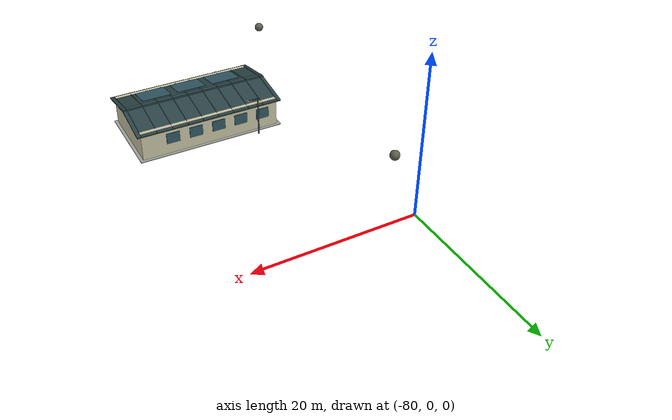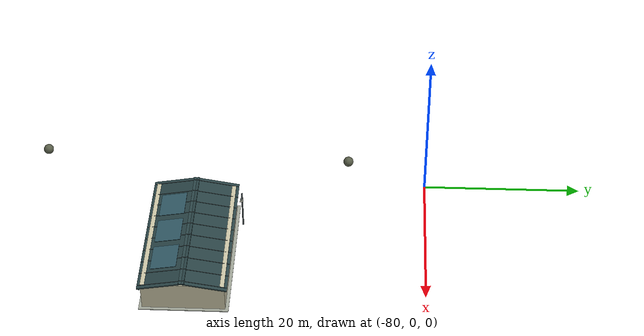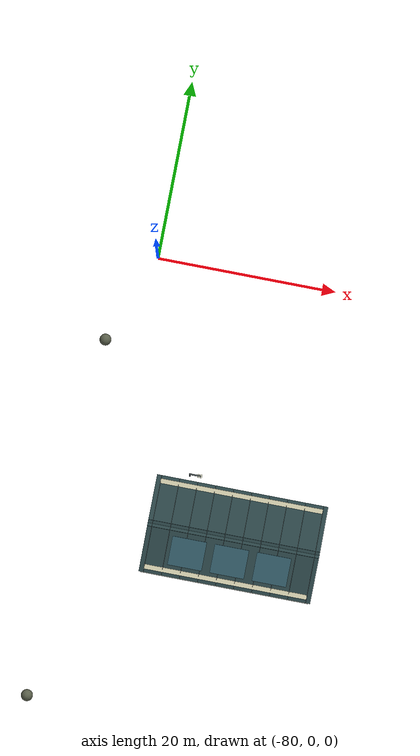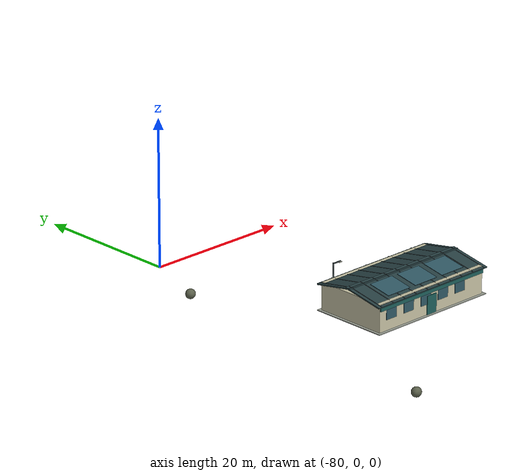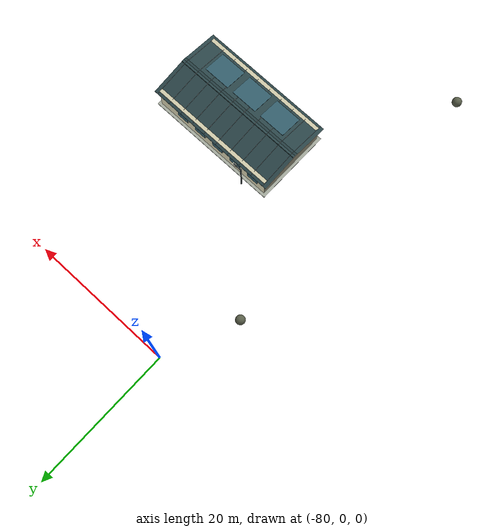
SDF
<sdf version="1.9">
 <world name="fleetscope_estate">
  <model name="field_office">
   <static>true</static>
   <pose>-66 -29 0 0 0 0</pose>
   <link name="structure">
    <visual name="visual_0">
     <pose>0 0 0.05 0 0 0</pose>
     <geometry><box><size>18.8 10.8 0.1</size></box></geometry>
     <material>
      <ambient>0.63 0.65 0.6 1</ambient>
      <diffuse>0.63 0.65 0.6 1</diffuse>
      <specular>.08 .08 .08 1</specular>
     </material>
     <cast_shadows>false</cast_shadows>
    </visual>
    <collision name="collision_0">
     <pose>0 0 0.05 0 0 0</pose>
     <geometry><box><size>18.8 10.8 0.1</size></box></geometry>
    </collision>
    <visual name="visual_1">
     <pose>0 0 1.9 0 0 0</pose>
     <geometry><box><size>18 10 3.8</size></box></geometry>
     <material>
      <ambient>0.8 0.78 0.66 1</ambient>
      <diffuse>0.8 0.78 0.66 1</diffuse>
      <specular>.08 .08 .08 1</specular>
     </material>
    </visual>
    <collision name="collision_1">
     <pose>0 0 1.9 0 0 0</pose>
     <geometry><box><size>18 10 3.8</size></box></geometry>
    </collision>
    <visual name="visual_2">
     <pose>-7 -5.035 2.204 0 0 0</pose>
     <geometry><box><size>1.7 0.08 1.4</size></box></geometry>
     <material>
      <ambient>0.19 0.35 0.4 1</ambient>
      <diffuse>0.19 0.35 0.4 1</diffuse>
      <specular>.08 .08 .08 1</specular>
     </material>
    </visual>
    <visual name="visual_3">
     <pose>-7 5.035 2.204 0 0 0</pose>
     <geometry><box><size>1.7 0.08 1.4</size></box></geometry>
     <material>
      <ambient>0.19 0.35 0.4 1</ambient>
      <diffuse>0.19 0.35 0.4 1</diffuse>
      <specular>.08 .08 .08 1</specular>
     </material>
    </visual>
    <visual name="visual_4">
     <pose>-4 -5.035 2.204 0 0 0</pose>
     <geometry><box><size>1.7 0.08 1.4</size></box></geometry>
     <material>
      <ambient>0.19 0.35 0.4 1</ambient>
      <diffuse>0.19 0.35 0.4 1</diffuse>
      <specular>.08 .08 .08 1</specular>
     </material>
    </visual>
    <visual name="visual_5">
     <pose>-4 5.035 2.204 0 0 0</pose>
     <geometry><box><size>1.7 0.08 1.4</size></box></geometry>
     <material>
      <ambient>0.19 0.35 0.4 1</ambient>
      <diffuse>0.19 0.35 0.4 1</diffuse>
      <specular>.08 .08 .08 1</specular>
     </material>
    </visual>
    <visual name="visual_6">
     <pose>-1 -5.035 2.204 0 0 0</pose>
     <geometry><box><size>1.7 0.08 1.4</size></box></geometry>
     <material>
      <ambient>0.19 0.35 0.4 1</ambient>
      <diffuse>0.19 0.35 0.4 1</diffuse>
      <specular>.08 .08 .08 1</specular>
     </material>
    </visual>
    <visual name="visual_7">
     <pose>-1 5.035 2.204 0 0 0</pose>
     <geometry><box><size>1.7 0.08 1.4</size></box></geometry>
     <material>
      <ambient>0.19 0.35 0.4 1</ambient>
      <diffuse>0.19 0.35 0.4 1</diffuse>
      <specular>.08 .08 .08 1</specular>
     </material>
    </visual>
    <visual name="visual_8">
     <pose>2 -5.035 2.204 0 0 0</pose>
     <geometry><box><size>1.7 0.08 1.4</size></box></geometry>
     <material>
      <ambient>0.19 0.35 0.4 1</ambient>
      <diffuse>0.19 0.35 0.4 1</diffuse>
      <specular>.08 .08 .08 1</specular>
     </material>
    </visual>
    <visual name="visual_9">
     <pose>2 5.035 2.204 0 0 0</pose>
     <geometry><box><size>1.7 0.08 1.4</size></box></geometry>
     <material>
      <ambient>0.19 0.35 0.4 1</ambient>
      <diffuse>0.19 0.35 0.4 1</diffuse>
      <specular>.08 .08 .08 1</specular>
     </material>
    </visual>
    <visual name="visual_10">
     <pose>5 -5.035 2.204 0 0 0</pose>
     <geometry><box><size>1.7 0.08 1.4</size></box></geometry>
     <material>
      <ambient>0.19 0.35 0.4 1</ambient>
      <diffuse>0.19 0.35 0.4 1</diffuse>
      <specular>.08 .08 .08 1</specular>
     </material>
    </visual>
    <visual name="visual_11">
     <pose>5 5.035 2.204 0 0 0</pose>
     <geometry><box><size>1.7 0.08 1.4</size></box></geometry>
     <material>
      <ambient>0.19 0.35 0.4 1</ambient>
      <diffuse>0.19 0.35 0.4 1</diffuse>
      <specular>.08 .08 .08 1</specular>
     </material>
    </visual>
    <visual name="visual_12">
     <pose>0 -5.065 1.3 0 0 0</pose>
     <geometry><box><size>1.6 0.1 2.6</size></box></geometry>
     <material>
      <ambient>0.12 0.38 0.36 1</ambient>
      <diffuse>0.12 0.38 0.36 1</diffuse>
      <specular>.08 .08 .08 1</specular>
     </material>
    </visual>
    <collision name="collision_12">
     <pose>0 -5.065 1.3 0 0 0</pose>
     <geometry><box><size>1.6 0.1 2.6</size></box></geometry>
    </collision>
    <visual name="visual_13">
     <pose>0 -2.5 4.08 0.18 0 0</pose>
     <geometry><box><size>19 5.8 0.16</size></box></geometry>
     <material>
      <ambient>0.16 0.26 0.27 1</ambient>
      <diffuse>0.16 0.26 0.27 1</diffuse>
      <specular>.08 .08 .08 1</specular>
     </material>
    </visual>
    <collision name="collision_13">
     <pose>0 -2.5 4.08 0.18 0 0</pose>
     <geometry><box><size>19 5.8 0.16</size></box></geometry>
    </collision>
    <visual name="visual_14">
     <pose>0 2.5 4.08 -0.18 0 0</pose>
     <geometry><box><size>19 5.8 0.16</size></box></geometry>
     <material>
      <ambient>0.16 0.26 0.27 1</ambient>
      <diffuse>0.16 0.26 0.27 1</diffuse>
      <specular>.08 .08 .08 1</specular>
     </material>
    </visual>
    <collision name="collision_14">
     <pose>0 2.5 4.08 -0.18 0 0</pose>
     <geometry><box><size>19 5.8 0.16</size></box></geometry>
    </collision>
    <visual name="visual_15">
     <pose>-9 -2.5 4.18 0.18 0 0</pose>
     <geometry><box><size>0.045 5.8 0.05</size></box></geometry>
     <material>
      <ambient>0.25 0.29 0.3 1</ambient>
      <diffuse>0.25 0.29 0.3 1</diffuse>
      <specular>.08 .08 .08 1</specular>
     </material>
     <cast_shadows>false</cast_shadows>
    </visual>
    <visual name="visual_16">
     <pose>-9 2.5 4.18 -0.18 0 0</pose>
     <geometry><box><size>0.045 5.8 0.05</size></box></geometry>
     <material>
      <ambient>0.25 0.29 0.3 1</ambient>
      <diffuse>0.25 0.29 0.3 1</diffuse>
      <specular>.08 .08 .08 1</specular>
     </material>
     <cast_shadows>false</cast_shadows>
    </visual>
    <visual name="visual_17">
     <pose>-7 -2.5 4.18 0.18 0 0</pose>
     <geometry><box><size>0.045 5.8 0.05</size></box></geometry>
     <material>
      <ambient>0.25 0.29 0.3 1</ambient>
      <diffuse>0.25 0.29 0.3 1</diffuse>
      <specular>.08 .08 .08 1</specular>
     </material>
     <cast_shadows>false</cast_shadows>
    </visual>
    <visual name="visual_18">
     <pose>-7 2.5 4.18 -0.18 0 0</pose>
     <geometry><box><size>0.045 5.8 0.05</size></box></geometry>
     <material>
      <ambient>0.25 0.29 0.3 1</ambient>
      <diffuse>0.25 0.29 0.3 1</diffuse>
      <specular>.08 .08 .08 1</specular>
     </material>
     <cast_shadows>false</cast_shadows>
    </visual>
    <visual name="visual_19">
     <pose>-5 -2.5 4.18 0.18 0 0</pose>
     <geometry><box><size>0.045 5.8 0.05</size></box></geometry>
     <material>
      <ambient>0.25 0.29 0.3 1</ambient>
      <diffuse>0.25 0.29 0.3 1</diffuse>
      <specular>.08 .08 .08 1</specular>
     </material>
     <cast_shadows>false</cast_shadows>
    </visual>
    <visual name="visual_20">
     <pose>-5 2.5 4.18 -0.18 0 0</pose>
     <geometry><box><size>0.045 5.8 0.05</size></box></geometry>
     <material>
      <ambient>0.25 0.29 0.3 1</ambient>
      <diffuse>0.25 0.29 0.3 1</diffuse>
      <specular>.08 .08 .08 1</specular>
     </material>
     <cast_shadows>false</cast_shadows>
    </visual>
    <visual name="visual_21">
     <pose>-3 -2.5 4.18 0.18 0 0</pose>
     <geometry><box><size>0.045 5.8 0.05</size></box></geometry>
     <material>
      <ambient>0.25 0.29 0.3 1</ambient>
      <diffuse>0.25 0.29 0.3 1</diffuse>
      <specular>.08 .08 .08 1</specular>
     </material>
     <cast_shadows>false</cast_shadows>
    </visual>
    <visual name="visual_22">
     <pose>-3 2.5 4.18 -0.18 0 0</pose>
     <geometry><box><size>0.045 5.8 0.05</size></box></geometry>
     <material>
      <ambient>0.25 0.29 0.3 1</ambient>
      <diffuse>0.25 0.29 0.3 1</diffuse>
      <specular>.08 .08 .08 1</specular>
     </material>
     <cast_shadows>false</cast_shadows>
    </visual>
    <visual name="visual_23">
     <pose>-1 -2.5 4.18 0.18 0 0</pose>
     <geometry><box><size>0.045 5.8 0.05</size></box></geometry>
     <material>
      <ambient>0.25 0.29 0.3 1</ambient>
      <diffuse>0.25 0.29 0.3 1</diffuse>
      <specular>.08 .08 .08 1</specular>
     </material>
     <cast_shadows>false</cast_shadows>
    </visual>
    <visual name="visual_24">
     <pose>-1 2.5 4.18 -0.18 0 0</pose>
     <geometry><box><size>0.045 5.8 0.05</size></box></geometry>
     <material>
      <ambient>0.25 0.29 0.3 1</ambient>
      <diffuse>0.25 0.29 0.3 1</diffuse>
      <specular>.08 .08 .08 1</specular>
     </material>
     <cast_shadows>false</cast_shadows>
    </visual>
    <visual name="visual_25">
     <pose>1 -2.5 4.18 0.18 0 0</pose>
     <geometry><box><size>0.045 5.8 0.05</size></box></geometry>
     <material>
      <ambient>0.25 0.29 0.3 1</ambient>
      <diffuse>0.25 0.29 0.3 1</diffuse>
      <specular>.08 .08 .08 1</specular>
     </material>
     <cast_shadows>false</cast_shadows>
    </visual>
    <visual name="visual_26">
     <pose>1 2.5 4.18 -0.18 0 0</pose>
     <geometry><box><size>0.045 5.8 0.05</size></box></geometry>
     <material>
      <ambient>0.25 0.29 0.3 1</ambient>
      <diffuse>0.25 0.29 0.3 1</diffuse>
      <specular>.08 .08 .08 1</specular>
     </material>
     <cast_shadows>false</cast_shadows>
    </visual>
    <visual name="visual_27">
     <pose>3 -2.5 4.18 0.18 0 0</pose>
     <geometry><box><size>0.045 5.8 0.05</size></box></geometry>
     <material>
      <ambient>0.25 0.29 0.3 1</ambient>
      <diffuse>0.25 0.29 0.3 1</diffuse>
      <specular>.08 .08 .08 1</specular>
     </material>
     <cast_shadows>false</cast_shadows>
    </visual>
    <visual name="visual_28">
     <pose>3 2.5 4.18 -0.18 0 0</pose>
     <geometry><box><size>0.045 5.8 0.05</size></box></geometry>
     <material>
      <ambient>0.25 0.29 0.3 1</ambient>
      <diffuse>0.25 0.29 0.3 1</diffuse>
      <specular>.08 .08 .08 1</specular>
     </material>
     <cast_shadows>false</cast_shadows>
    </visual>
    <visual name="visual_29">
     <pose>5 -2.5 4.18 0.18 0 0</pose>
     <geometry><box><size>0.045 5.8 0.05</size></box></geometry>
     <material>
      <ambient>0.25 0.29 0.3 1</ambient>
      <diffuse>0.25 0.29 0.3 1</diffuse>
      <specular>.08 .08 .08 1</specular>
     </material>
     <cast_shadows>false</cast_shadows>
    </visual>
    <visual name="visual_30">
     <pose>5 2.5 4.18 -0.18 0 0</pose>
     <geometry><box><size>0.045 5.8 0.05</size></box></geometry>
     <material>
      <ambient>0.25 0.29 0.3 1</ambient>
      <diffuse>0.25 0.29 0.3 1</diffuse>
      <specular>.08 .08 .08 1</specular>
     </material>
     <cast_shadows>false</cast_shadows>
    </visual>
    <visual name="visual_31">
     <pose>7 -2.5 4.18 0.18 0 0</pose>
     <geometry><box><size>0.045 5.8 0.05</size></box></geometry>
     <material>
      <ambient>0.25 0.29 0.3 1</ambient>
      <diffuse>0.25 0.29 0.3 1</diffuse>
      <specular>.08 .08 .08 1</specular>
     </material>
     <cast_shadows>false</cast_shadows>
    </visual>
    <visual name="visual_32">
     <pose>7 2.5 4.18 -0.18 0 0</pose>
     <geometry><box><size>0.045 5.8 0.05</size></box></geometry>
     <material>
      <ambient>0.25 0.29 0.3 1</ambient>
      <diffuse>0.25 0.29 0.3 1</diffuse>
      <specular>.08 .08 .08 1</specular>
     </material>
     <cast_shadows>false</cast_shadows>
    </visual>
    <visual name="visual_33">
     <pose>9 -2.5 4.18 0.18 0 0</pose>
     <geometry><box><size>0.045 5.8 0.05</size></box></geometry>
     <material>
      <ambient>0.25 0.29 0.3 1</ambient>
      <diffuse>0.25 0.29 0.3 1</diffuse>
      <specular>.08 .08 .08 1</specular>
     </material>
     <cast_shadows>false</cast_shadows>
    </visual>
    <visual name="visual_34">
     <pose>9 2.5 4.18 -0.18 0 0</pose>
     <geometry><box><size>0.045 5.8 0.05</size></box></geometry>
     <material>
      <ambient>0.25 0.29 0.3 1</ambient>
      <diffuse>0.25 0.29 0.3 1</diffuse>
      <specular>.08 .08 .08 1</specular>
     </material>
     <cast_shadows>false</cast_shadows>
    </visual>
    <visual name="visual_35">
     <pose>0 -5.14 3.25 0 0 0</pose>
     <geometry><box><size>18 0.16 0.65</size></box></geometry>
     <material>
      <ambient>0.12 0.38 0.36 1</ambient>
      <diffuse>0.12 0.38 0.36 1</diffuse>
      <specular>.08 .08 .08 1</specular>
     </material>
    </visual>
    <visual name="visual_36">
     <pose>-4.68 -2.5 4.32 0.18 0 0</pose>
     <geometry><box><size>3.78 3.2 0.06</size></box></geometry>
     <material>
      <ambient>0.19 0.35 0.4 1</ambient>
      <diffuse>0.19 0.35 0.4 1</diffuse>
      <specular>.08 .08 .08 1</specular>
     </material>
     <cast_shadows>false</cast_shadows>
    </visual>
    <visual name="visual_37">
     <pose>0 -2.5 4.32 0.18 0 0</pose>
     <geometry><box><size>3.78 3.2 0.06</size></box></geometry>
     <material>
      <ambient>0.19 0.35 0.4 1</ambient>
      <diffuse>0.19 0.35 0.4 1</diffuse>
      <specular>.08 .08 .08 1</specular>
     </material>
     <cast_shadows>false</cast_shadows>
    </visual>
    <visual name="visual_38">
     <pose>4.68 -2.5 4.32 0.18 0 0</pose>
     <geometry><box><size>3.78 3.2 0.06</size></box></geometry>
     <material>
      <ambient>0.19 0.35 0.4 1</ambient>
      <diffuse>0.19 0.35 0.4 1</diffuse>
      <specular>.08 .08 .08 1</specular>
     </material>
     <cast_shadows>false</cast_shadows>
    </visual>
   </link>
  </model>
  <model name="road_light_-72">
   <static>true</static>
   <pose>-72 -23 0 0 0 0</pose>
   <link name="structure">
    <visual name="visual_0">
     <pose>0 0 2.6 0 0 0</pose>
     <geometry><cylinder><radius>0.09</radius><length>5.2</length></cylinder></geometry>
     <material>
      <ambient>0.25 0.29 0.3 1</ambient>
      <diffuse>0.25 0.29 0.3 1</diffuse>
      <specular>.08 .08 .08 1</specular>
     </material>
    </visual>
    <collision name="collision_0">
     <pose>0 0 2.6 0 0 0</pose>
     <geometry><cylinder><radius>0.09</radius><length>5.2</length></cylinder></geometry>
    </collision>
    <visual name="visual_1">
     <pose>0.6 0 5.1 0 0 0</pose>
     <geometry><box><size>1.3 0.15 0.12</size></box></geometry>
     <material>
      <ambient>0.25 0.29 0.3 1</ambient>
      <diffuse>0.25 0.29 0.3 1</diffuse>
      <specular>.08 .08 .08 1</specular>
     </material>
    </visual>
    <collision name="collision_1">
     <pose>0.6 0 5.1 0 0 0</pose>
     <geometry><box><size>1.3 0.15 0.12</size></box></geometry>
    </collision>
    <visual name="visual_2">
     <pose>1.1 0 5.03 0 0 0</pose>
     <geometry><box><size>0.5 0.35 0.08</size></box></geometry>
     <material>
      <ambient>0.9 0.9 0.81 1</ambient>
      <diffuse>0.9 0.9 0.81 1</diffuse>
      <specular>.08 .08 .08 1</specular>
     </material>
     <cast_shadows>false</cast_shadows>
    </visual>
   </link>
  </model>
  <model name="landscape_rock_-85_-50">
   <static>true</static>
   <pose>-85 -50 0 0 0 0</pose>
   <link name="structure">
    <visual name="visual_0">
     <pose>0 0 0.6 0 0 0</pose>
     <geometry><sphere><radius>0.65</radius></sphere></geometry>
     <material>
      <ambient>0.35 0.37 0.29 1</ambient>
      <diffuse>0.35 0.37 0.29 1</diffuse>
      <specular>.08 .08 .08 1</specular>
     </material>
    </visual>
    <collision name="collision_0">
     <pose>0 0 0.6 0 0 0</pose>
     <geometry><sphere><radius>0.65</radius></sphere></geometry>
    </collision>
   </link>
  </model>
  <model name="landscape_rock_-84_-10">
   <static>true</static>
   <pose>-84 -10 0 0 0 0</pose>
   <link name="structure">
    <visual name="visual_0">
     <pose>0 0 0.6 0 0 0</pose>
     <geometry><sphere><radius>0.65</radius></sphere></geometry>
     <material>
      <ambient>0.35 0.37 0.29 1</ambient>
      <diffuse>0.35 0.37 0.29 1</diffuse>
      <specular>.08 .08 .08 1</specular>
     </material>
    </visual>
    <collision name="collision_0">
     <pose>0 0 0.6 0 0 0</pose>
     <geometry><sphere><radius>0.65</radius></sphere></geometry>
    </collision>
   </link>
  </model>
 </world>
</sdf>
